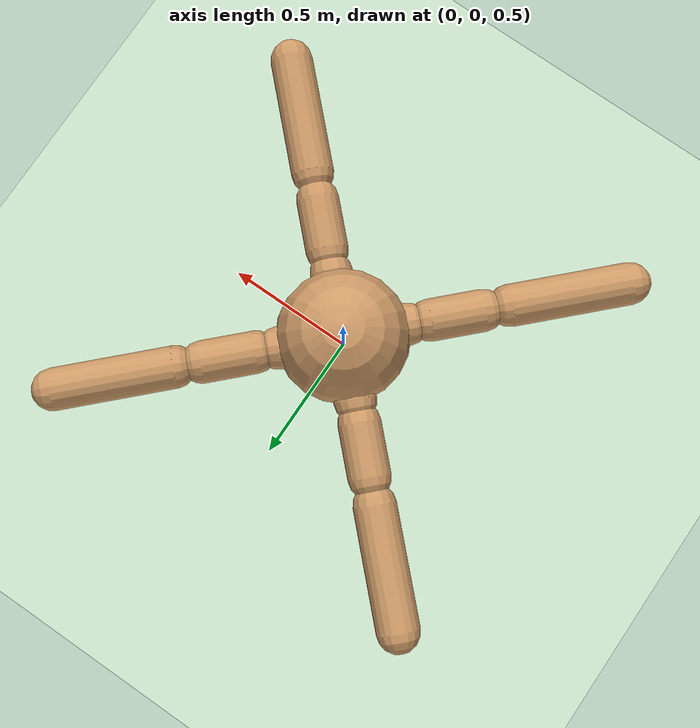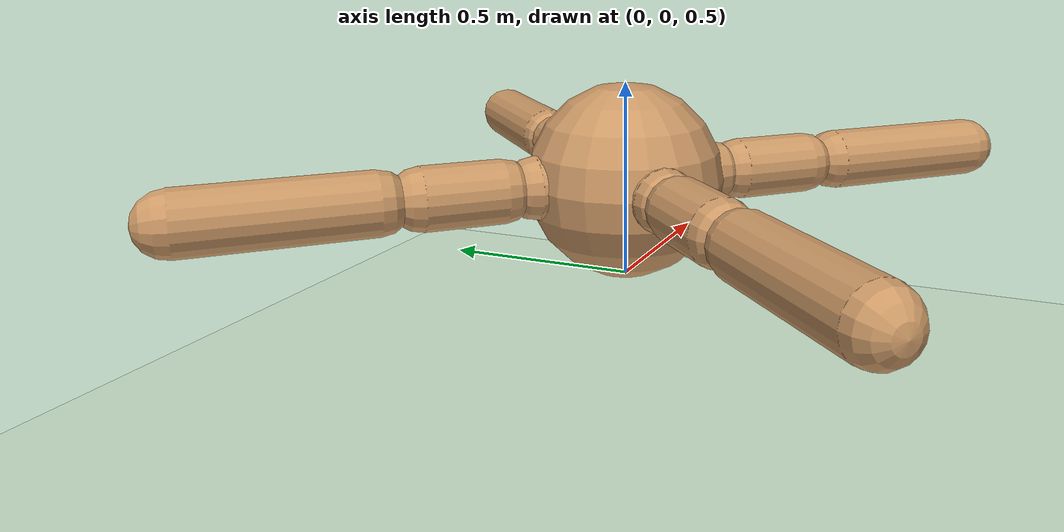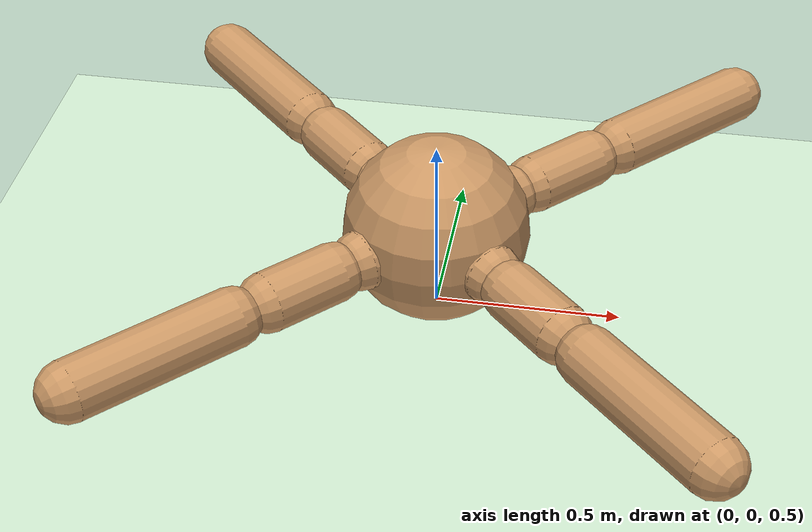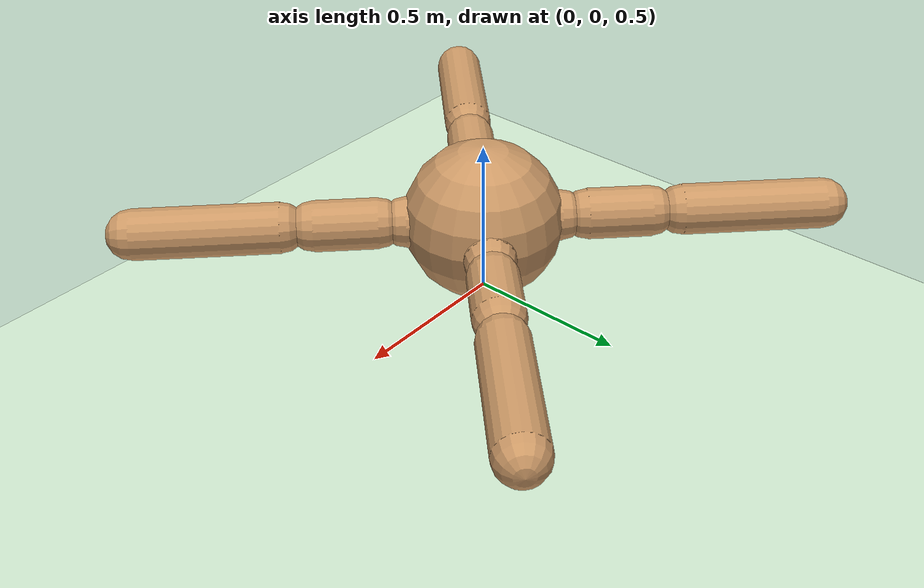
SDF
<?xml version="1.0"?>
<sdf version="1.8">
  <world name="ant">

    <physics name="fast" type="ignored">
      <max_step_size>0.01</max_step_size>
      <real_time_update_rate>0</real_time_update_rate>
    </physics>

    <plugin filename="gz-sim-physics-system"           name="gz::sim::systems::Physics"/>
    <plugin filename="gz-sim-contact-system"           name="gz::sim::systems::Contact"/>
    <plugin filename="gz-sim-scene-broadcaster-system" name="gz::sim::systems::SceneBroadcaster"/>
    <plugin filename="gz-sim-user-commands-system"     name="gz::sim::systems::UserCommands"/>

    <light name="sun" type="directional">
      <cast_shadows>true</cast_shadows>
      <pose>0 0 10 0 0 0</pose>
      <diffuse>0.8 0.8 0.8 1</diffuse>
      <specular>0.2 0.2 0.2 1</specular>
      <attenuation><range>1000</range><constant>0.9</constant><linear>0.01</linear><quadratic>0.001</quadratic></attenuation>
      <direction>-0.5 0.1 -0.9</direction>
    </light>

    <model name="ground_plane">
      <static>true</static>
      <link name="link">
        <collision name="collision">
          <geometry><plane><normal>0 0 1</normal><size>100 100</size></plane></geometry>
          <surface><friction><ode><mu>1.0</mu><mu2>1.0</mu2></ode></friction></surface>
        </collision>
        <visual name="visual">
          <geometry><plane><normal>0 0 1</normal><size>100 100</size></plane></geometry>
          <material><ambient>0.8 0.9 0.8 1</ambient><diffuse>0.8 0.9 0.8 1</diffuse></material>
        </visual>
      </link>
    </model>

    <model name="ant">
      <pose>0 0 0.75 0 0 0</pose>

      <!--
        Torso: sphere r=0.25, plus 4 rigid diagonal "coxa" geoms
        connecting torso to hip joints (density=5 kg/m³ per MuJoCo).
        Combined mass ≈ 0.484 kg.
      -->
      <link name="torso">
        <inertial>
          <mass>0.484</mass>
          <inertia>
            <ixx>0.020</ixx><ixy>0</ixy><ixz>0</ixz>
            <iyy>0.020</iyy><iyz>0</iyz>
            <izz>0.020</izz>
          </inertia>
        </inertial>
        <!-- Torso body sphere -->
        <collision name="torso_collision">
          <geometry><sphere><radius>0.25</radius></sphere></geometry>
          <surface><friction><ode><mu>1.0</mu></ode></friction></surface>
        </collision>
        <visual name="torso_visual">
          <geometry><sphere><radius>0.25</radius></sphere></geometry>
          <material><diffuse>0.8 0.6 0.4 1</diffuse><ambient>0.8 0.6 0.4 1</ambient></material>
        </visual>
        <!-- Rigid coxa geoms: short diagonal capsules from torso to each hip -->
        <collision name="coxa_1_collision">
          <pose>0.1 0.1 0 0 1.5708 0.7854</pose>
          <geometry><capsule><radius>0.08</radius><length>0.2</length></capsule></geometry>
        </collision>
        <visual name="coxa_1_visual">
          <pose>0.1 0.1 0 0 1.5708 0.7854</pose>
          <geometry><capsule><radius>0.08</radius><length>0.2</length></capsule></geometry>
          <material><diffuse>0.8 0.6 0.4 1</diffuse><ambient>0.8 0.6 0.4 1</ambient></material>
        </visual>
        <collision name="coxa_2_collision">
          <pose>-0.1 0.1 0 0 1.5708 2.3562</pose>
          <geometry><capsule><radius>0.08</radius><length>0.2</length></capsule></geometry>
        </collision>
        <visual name="coxa_2_visual">
          <pose>-0.1 0.1 0 0 1.5708 2.3562</pose>
          <geometry><capsule><radius>0.08</radius><length>0.2</length></capsule></geometry>
          <material><diffuse>0.8 0.6 0.4 1</diffuse><ambient>0.8 0.6 0.4 1</ambient></material>
        </visual>
        <collision name="coxa_3_collision">
          <pose>-0.1 -0.1 0 0 1.5708 -2.3562</pose>
          <geometry><capsule><radius>0.08</radius><length>0.2</length></capsule></geometry>
        </collision>
        <visual name="coxa_3_visual">
          <pose>-0.1 -0.1 0 0 1.5708 -2.3562</pose>
          <geometry><capsule><radius>0.08</radius><length>0.2</length></capsule></geometry>
          <material><diffuse>0.8 0.6 0.4 1</diffuse><ambient>0.8 0.6 0.4 1</ambient></material>
        </visual>
        <collision name="coxa_4_collision">
          <pose>0.1 -0.1 0 0 1.5708 -0.7854</pose>
          <geometry><capsule><radius>0.08</radius><length>0.2</length></capsule></geometry>
        </collision>
        <visual name="coxa_4_visual">
          <pose>0.1 -0.1 0 0 1.5708 -0.7854</pose>
          <geometry><capsule><radius>0.08</radius><length>0.2</length></capsule></geometry>
          <material><diffuse>0.8 0.6 0.4 1</diffuse><ambient>0.8 0.6 0.4 1</ambient></material>
        </visual>
      </link>

      <joint name="hip_1" type="revolute">
        <pose relative_to="torso">0.2 0.2 0 0 0 0</pose>
        <parent>torso</parent><child>hip_1_link</child>
        <axis>
          <xyz>0 0 1</xyz>
          <limit><lower>-0.5236</lower><upper>0.5236</upper><effort>150</effort><velocity>100</velocity></limit>
          <dynamics><damping>1.0</damping></dynamics>
        </axis>
      </joint>
      <link name="hip_1_link">
        <pose relative_to="hip_1">0 0 0 0 0 0</pose>
        <inertial>
          <pose>0.1 0.1 0 0 0 0</pose>
          <mass>0.0392</mass>
          <inertia><ixx>0.001</ixx><ixy>0</ixy><ixz>0</ixz><iyy>0.001</iyy><iyz>0</iyz><izz>0.0003</izz></inertia>
        </inertial>
        <collision name="col">
          <pose>0.1 0.1 0 0 1.5708 0.7854</pose>
          <geometry><capsule><radius>0.08</radius><length>0.2</length></capsule></geometry>
          <surface><friction><ode><mu>1.0</mu></ode></friction></surface>
        </collision>
        <visual name="vis">
          <pose>0.1 0.1 0 0 1.5708 0.7854</pose>
          <geometry><capsule><radius>0.08</radius><length>0.2</length></capsule></geometry>
          <material><diffuse>0.8 0.6 0.4 1</diffuse><ambient>0.8 0.6 0.4 1</ambient></material>
        </visual>
      </link>

      <joint name="ankle_1" type="revolute">
        <pose relative_to="hip_1_link">0.2 0.2 0 0 0 0</pose>
        <parent>hip_1_link</parent><child>ankle_1_link</child>
        <axis>
          <xyz>-0.7071 0.7071 0</xyz>
          <limit><lower>0.5236</lower><upper>1.2217</upper><effort>150</effort><velocity>100</velocity></limit>
          <dynamics><damping>1.0</damping></dynamics>
          <initial_position>0.8727</initial_position>
        </axis>
      </joint>
      <link name="ankle_1_link">
        <pose relative_to="ankle_1">0 0 0 0 0 0</pose>
        <inertial>
          <pose>0.2 0.2 0 0 0 0</pose>
          <mass>0.0676</mass>
          <inertia><ixx>0.003</ixx><ixy>0</ixy><ixz>0</ixz><iyy>0.003</iyy><iyz>0</iyz><izz>0.0005</izz></inertia>
        </inertial>
        <collision name="col">
          <pose>0.2 0.2 0 0 1.5708 0.7854</pose>
          <geometry><capsule><radius>0.08</radius><length>0.45</length></capsule></geometry>
          <surface><friction><ode><mu>1.0</mu></ode></friction></surface>
        </collision>
        <visual name="vis">
          <pose>0.2 0.2 0 0 1.5708 0.7854</pose>
          <geometry><capsule><radius>0.08</radius><length>0.45</length></capsule></geometry>
          <material><diffuse>0.8 0.6 0.4 1</diffuse><ambient>0.8 0.6 0.4 1</ambient></material>
        </visual>
      </link>

      <!-- =================================================================
           Front-right leg: hip_2 at (-0.2,0.2,0)
           ================================================================= -->
      <joint name="hip_2" type="revolute">
        <pose relative_to="torso">-0.2 0.2 0 0 0 0</pose>
        <parent>torso</parent><child>hip_2_link</child>
        <axis>
          <xyz>0 0 1</xyz>
          <limit><lower>-0.5236</lower><upper>0.5236</upper><effort>150</effort><velocity>100</velocity></limit>
          <dynamics><damping>1.0</damping></dynamics>
        </axis>
      </joint>
      <link name="hip_2_link">
        <pose relative_to="hip_2">0 0 0 0 0 0</pose>
        <inertial>
          <pose>-0.1 0.1 0 0 0 0</pose>
          <mass>0.0392</mass>
          <inertia><ixx>0.001</ixx><ixy>0</ixy><ixz>0</ixz><iyy>0.001</iyy><iyz>0</iyz><izz>0.0003</izz></inertia>
        </inertial>
        <collision name="col">
          <pose>-0.1 0.1 0 0 1.5708 2.3562</pose>
          <geometry><capsule><radius>0.08</radius><length>0.2</length></capsule></geometry>
          <surface><friction><ode><mu>1.0</mu></ode></friction></surface>
        </collision>
        <visual name="vis">
          <pose>-0.1 0.1 0 0 1.5708 2.3562</pose>
          <geometry><capsule><radius>0.08</radius><length>0.2</length></capsule></geometry>
          <material><diffuse>0.8 0.6 0.4 1</diffuse><ambient>0.8 0.6 0.4 1</ambient></material>
        </visual>
      </link>

      <joint name="ankle_2" type="revolute">
        <pose relative_to="hip_2_link">-0.2 0.2 0 0 0 0</pose>
        <parent>hip_2_link</parent><child>ankle_2_link</child>
        <axis>
          <xyz>0.7071 0.7071 0</xyz>
          <limit><lower>-1.2217</lower><upper>-0.5236</upper><effort>150</effort><velocity>100</velocity></limit>
          <dynamics><damping>1.0</damping></dynamics>
          <initial_position>-0.8727</initial_position>
        </axis>
      </joint>
      <link name="ankle_2_link">
        <pose relative_to="ankle_2">0 0 0 0 0 0</pose>
        <inertial>
          <pose>-0.2 0.2 0 0 0 0</pose>
          <mass>0.0676</mass>
          <inertia><ixx>0.003</ixx><ixy>0</ixy><ixz>0</ixz><iyy>0.003</iyy><iyz>0</iyz><izz>0.0005</izz></inertia>
        </inertial>
        <collision name="col">
          <pose>-0.2 0.2 0 0 1.5708 2.3562</pose>
          <geometry><capsule><radius>0.08</radius><length>0.45</length></capsule></geometry>
          <surface><friction><ode><mu>1.0</mu></ode></friction></surface>
        </collision>
        <visual name="vis">
          <pose>-0.2 0.2 0 0 1.5708 2.3562</pose>
          <geometry><capsule><radius>0.08</radius><length>0.45</length></capsule></geometry>
          <material><diffuse>0.8 0.6 0.4 1</diffuse><ambient>0.8 0.6 0.4 1</ambient></material>
        </visual>
      </link>

      <!-- =================================================================
           Back-left leg: hip_3 at (-0.2,-0.2,0)
           ================================================================= -->
      <joint name="hip_3" type="revolute">
        <pose relative_to="torso">-0.2 -0.2 0 0 0 0</pose>
        <parent>torso</parent><child>hip_3_link</child>
        <axis>
          <xyz>0 0 1</xyz>
          <limit><lower>-0.5236</lower><upper>0.5236</upper><effort>150</effort><velocity>100</velocity></limit>
          <dynamics><damping>1.0</damping></dynamics>
        </axis>
      </joint>
      <link name="hip_3_link">
        <pose relative_to="hip_3">0 0 0 0 0 0</pose>
        <inertial>
          <pose>-0.1 -0.1 0 0 0 0</pose>
          <mass>0.0392</mass>
          <inertia><ixx>0.001</ixx><ixy>0</ixy><ixz>0</ixz><iyy>0.001</iyy><iyz>0</iyz><izz>0.0003</izz></inertia>
        </inertial>
        <collision name="col">
          <pose>-0.1 -0.1 0 0 1.5708 -2.3562</pose>
          <geometry><capsule><radius>0.08</radius><length>0.2</length></capsule></geometry>
          <surface><friction><ode><mu>1.0</mu></ode></friction></surface>
        </collision>
        <visual name="vis">
          <pose>-0.1 -0.1 0 0 1.5708 -2.3562</pose>
          <geometry><capsule><radius>0.08</radius><length>0.2</length></capsule></geometry>
          <material><diffuse>0.8 0.6 0.4 1</diffuse><ambient>0.8 0.6 0.4 1</ambient></material>
        </visual>
      </link>

      <joint name="ankle_3" type="revolute">
        <pose relative_to="hip_3_link">-0.2 -0.2 0 0 0 0</pose>
        <parent>hip_3_link</parent><child>ankle_3_link</child>
        <axis>
          <xyz>-0.7071 0.7071 0</xyz>
          <limit><lower>-1.2217</lower><upper>-0.5236</upper><effort>150</effort><velocity>100</velocity></limit>
          <dynamics><damping>1.0</damping></dynamics>
          <initial_position>-0.8727</initial_position>
        </axis>
      </joint>
      <link name="ankle_3_link">
        <pose relative_to="ankle_3">0 0 0 0 0 0</pose>
        <inertial>
          <pose>-0.2 -0.2 0 0 0 0</pose>
          <mass>0.0676</mass>
          <inertia><ixx>0.003</ixx><ixy>0</ixy><ixz>0</ixz><iyy>0.003</iyy><iyz>0</iyz><izz>0.0005</izz></inertia>
        </inertial>
        <collision name="col">
          <pose>-0.2 -0.2 0 0 1.5708 -2.3562</pose>
          <geometry><capsule><radius>0.08</radius><length>0.45</length></capsule></geometry>
          <surface><friction><ode><mu>1.0</mu></ode></friction></surface>
        </collision>
        <visual name="vis">
          <pose>-0.2 -0.2 0 0 1.5708 -2.3562</pose>
          <geometry><capsule><radius>0.08</radius><length>0.45</length></capsule></geometry>
          <material><diffuse>0.8 0.6 0.4 1</diffuse><ambient>0.8 0.6 0.4 1</ambient></material>
        </visual>
      </link>

      <!-- =================================================================
           Right-back leg: hip_4 at (0.2,-0.2,0)
           ================================================================= -->
      <joint name="hip_4" type="revolute">
        <pose relative_to="torso">0.2 -0.2 0 0 0 0</pose>
        <parent>torso</parent><child>hip_4_link</child>
        <axis>
          <xyz>0 0 1</xyz>
          <limit><lower>-0.5236</lower><upper>0.5236</upper><effort>150</effort><velocity>100</velocity></limit>
          <dynamics><damping>1.0</damping></dynamics>
        </axis>
      </joint>
      <link name="hip_4_link">
        <pose relative_to="hip_4">0 0 0 0 0 0</pose>
        <inertial>
          <pose>0.1 -0.1 0 0 0 0</pose>
          <mass>0.0392</mass>
          <inertia><ixx>0.001</ixx><ixy>0</ixy><ixz>0</ixz><iyy>0.001</iyy><iyz>0</iyz><izz>0.0003</izz></inertia>
        </inertial>
        <collision name="col">
          <pose>0.1 -0.1 0 0 1.5708 -0.7854</pose>
          <geometry><capsule><radius>0.08</radius><length>0.2</length></capsule></geometry>
          <surface><friction><ode><mu>1.0</mu></ode></friction></surface>
        </collision>
        <visual name="vis">
          <pose>0.1 -0.1 0 0 1.5708 -0.7854</pose>
          <geometry><capsule><radius>0.08</radius><length>0.2</length></capsule></geometry>
          <material><diffuse>0.8 0.6 0.4 1</diffuse><ambient>0.8 0.6 0.4 1</ambient></material>
        </visual>
      </link>

      <joint name="ankle_4" type="revolute">
        <pose relative_to="hip_4_link">0.2 -0.2 0 0 0 0</pose>
        <parent>hip_4_link</parent><child>ankle_4_link</child>
        <axis>
          <xyz>0.7071 0.7071 0</xyz>
          <limit><lower>0.5236</lower><upper>1.2217</upper><effort>150</effort><velocity>100</velocity></limit>
          <dynamics><damping>1.0</damping></dynamics>
          <initial_position>0.8727</initial_position>
        </axis>
      </joint>
      <link name="ankle_4_link">
        <pose relative_to="ankle_4">0 0 0 0 0 0</pose>
        <inertial>
          <pose>0.2 -0.2 0 0 0 0</pose>
          <mass>0.0676</mass>
          <inertia><ixx>0.003</ixx><ixy>0</ixy><ixz>0</ixz><iyy>0.003</iyy><iyz>0</iyz><izz>0.0005</izz></inertia>
        </inertial>
        <collision name="col">
          <pose>0.2 -0.2 0 0 1.5708 -0.7854</pose>
          <geometry><capsule><radius>0.08</radius><length>0.45</length></capsule></geometry>
          <surface><friction><ode><mu>1.0</mu></ode></friction></surface>
        </collision>
        <visual name="vis">
          <pose>0.2 -0.2 0 0 1.5708 -0.7854</pose>
          <geometry><capsule><radius>0.08</radius><length>0.45</length></capsule></geometry>
          <material><diffuse>0.8 0.6 0.4 1</diffuse><ambient>0.8 0.6 0.4 1</ambient></material>
        </visual>
      </link>

      <!-- Force controllers (gear=150 each) -->
      <plugin filename="gz-sim-joint-controller-system" name="gz::sim::systems::JointController">
        <joint_name>hip_1</joint_name><use_force_commands>true</use_force_commands>
        <cmd_max>150</cmd_max><cmd_min>-150</cmd_min>
      </plugin>
      <plugin filename="gz-sim-joint-controller-system" name="gz::sim::systems::JointController">
        <joint_name>ankle_1</joint_name><use_force_commands>true</use_force_commands>
        <cmd_max>150</cmd_max><cmd_min>-150</cmd_min>
      </plugin>
      <plugin filename="gz-sim-joint-controller-system" name="gz::sim::systems::JointController">
        <joint_name>hip_2</joint_name><use_force_commands>true</use_force_commands>
        <cmd_max>150</cmd_max><cmd_min>-150</cmd_min>
      </plugin>
      <plugin filename="gz-sim-joint-controller-system" name="gz::sim::systems::JointController">
        <joint_name>ankle_2</joint_name><use_force_commands>true</use_force_commands>
        <cmd_max>150</cmd_max><cmd_min>-150</cmd_min>
      </plugin>
      <plugin filename="gz-sim-joint-controller-system" name="gz::sim::systems::JointController">
        <joint_name>hip_3</joint_name><use_force_commands>true</use_force_commands>
        <cmd_max>150</cmd_max><cmd_min>-150</cmd_min>
      </plugin>
      <plugin filename="gz-sim-joint-controller-system" name="gz::sim::systems::JointController">
        <joint_name>ankle_3</joint_name><use_force_commands>true</use_force_commands>
        <cmd_max>150</cmd_max><cmd_min>-150</cmd_min>
      </plugin>
      <plugin filename="gz-sim-joint-controller-system" name="gz::sim::systems::JointController">
        <joint_name>hip_4</joint_name><use_force_commands>true</use_force_commands>
        <cmd_max>150</cmd_max><cmd_min>-150</cmd_min>
      </plugin>
      <plugin filename="gz-sim-joint-controller-system" name="gz::sim::systems::JointController">
        <joint_name>ankle_4</joint_name><use_force_commands>true</use_force_commands>
        <cmd_max>150</cmd_max><cmd_min>-150</cmd_min>
      </plugin>

      <plugin filename="gz-sim-joint-state-publisher-system" name="gz::sim::systems::JointStatePublisher">
        <joint_name>hip_1</joint_name><joint_name>ankle_1</joint_name>
        <joint_name>hip_2</joint_name><joint_name>ankle_2</joint_name>
        <joint_name>hip_3</joint_name><joint_name>ankle_3</joint_name>
        <joint_name>hip_4</joint_name><joint_name>ankle_4</joint_name>
      </plugin>
    </model>

  </world>
</sdf>
